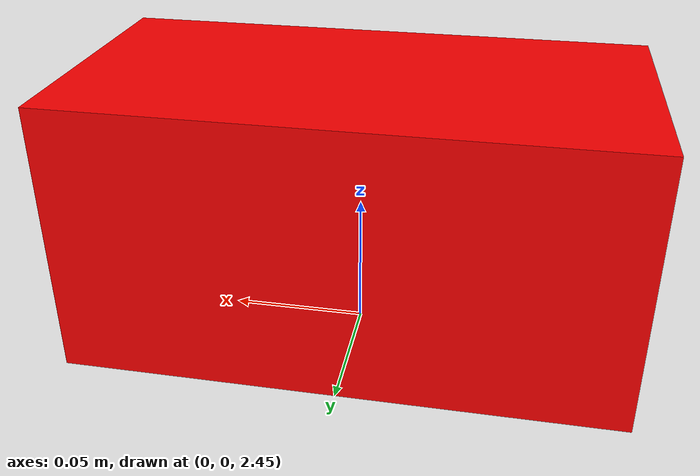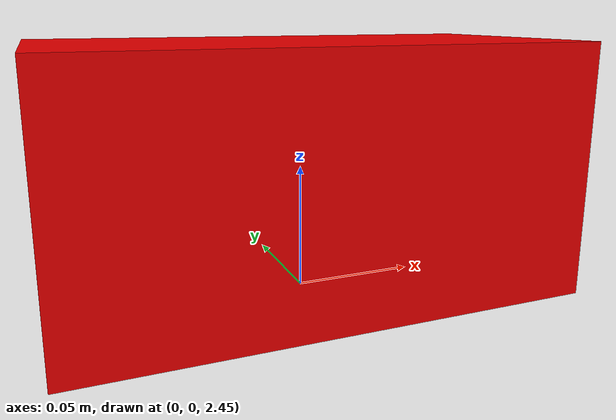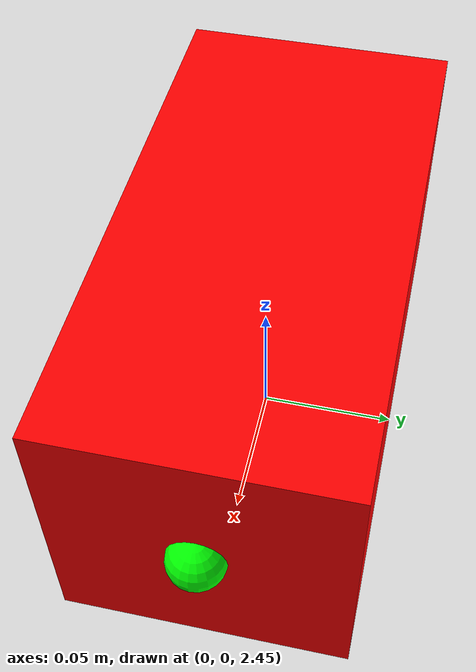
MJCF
<mujoco model="simple_world">
  <option gravity="0 0 -9.81"/>

  <worldbody>
    <geom name="floor" type="plane" size="2 2 0.1" rgba="0.8 0.8 0.8 1"/>
    <body name="cuboid" pos="0 0 2.5">
      <freejoint/>
      <geom name="box" type="box" size="0.1 0.05 0.05"
            rgba="1 0 0 1" mass="0.5"
            friction="0.4 0.02 0.02"/>  <!-- lower sliding/rolling -->
      <site name="force_site" pos="0.1 0.0 0" size="0.01" rgba="0 1 0 1"/>
    </body>
  </worldbody>
</mujoco>
